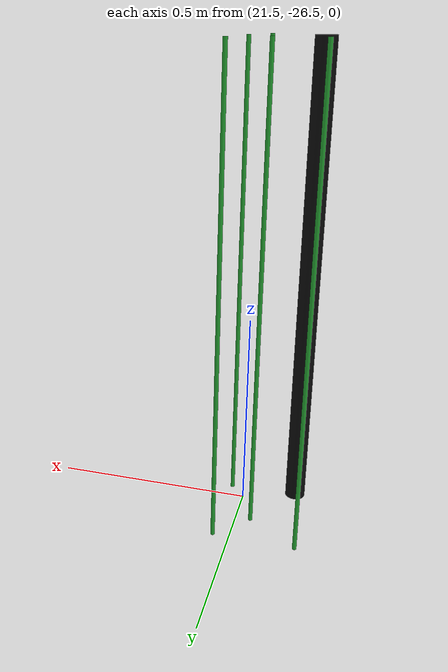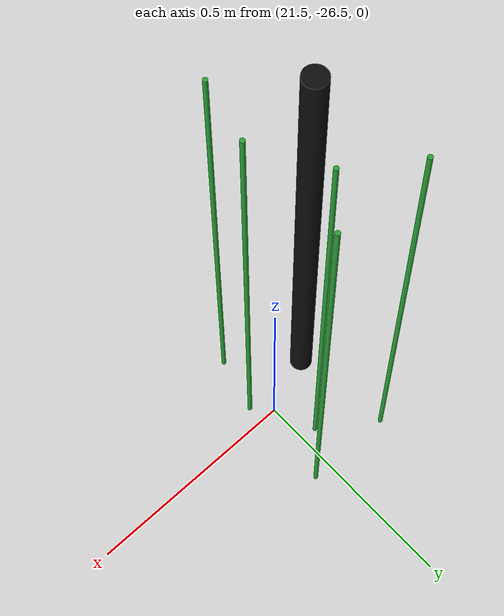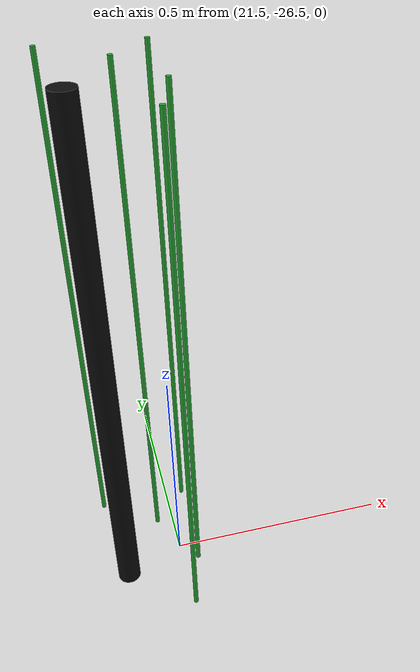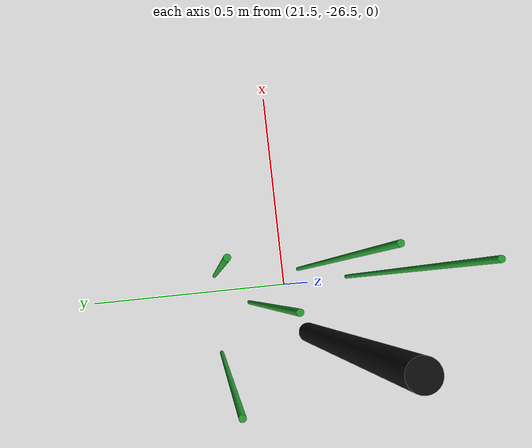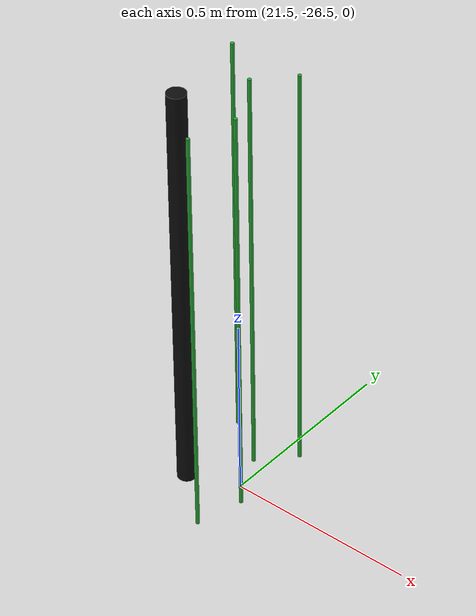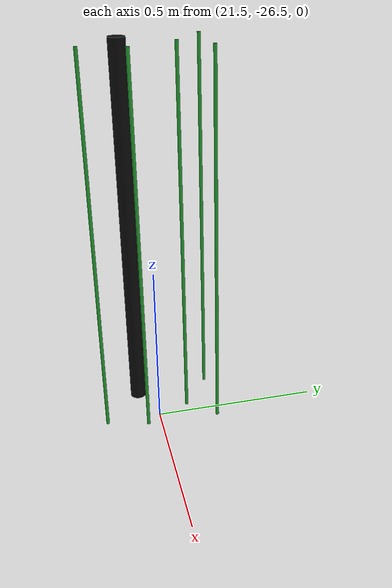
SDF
<sdf version="1.6">
 <world name="default">
  <model name="pole_14">
   <static>1</static>
   <pose>21.37 -26.55 0.575 0 -0 0</pose>
   <link name="link">
    <collision name="collision">
     <geometry><cylinder><length>1.15</length><radius>0.025</radius></cylinder></geometry>
    </collision>
    <visual name="visual">
     <geometry><cylinder><length>1.15</length><radius>0.025</radius></cylinder></geometry>
     <material>
      <script><uri>file://media/materials/scripts/gazebo.material</uri><name>Gazebo/Chrome</name></script>
      <shader type="vertex"><normal_map>__default__</normal_map></shader>
      <emissive>0.1 0.1 0.1 1</emissive>
      <specular>0.01 0.01 0.01 1</specular>
      <ambient>0.5 0.5 0.5 1</ambient>
      <diffuse>0.05 0.05 0.05 1</diffuse>
     </material>
    </visual>
   </link>
  </model>
  <model name="pole_27_clone_clone_135">
   <link name="link">
    <inertial>
     <mass>1</mass>
     <inertia><ixx>1</ixx><ixy>0</ixy><ixz>0</ixz><iyy>1</iyy><iyz>0</iyz><izz>1</izz></inertia>
    </inertial>
    <visual name="visual">
     <geometry><cylinder><length>1.15</length><radius>0.005</radius></cylinder></geometry>
     <material>
      <script><uri>file://media/materials/scripts/gazebo.material</uri><name>Gazebo/Green</name></script>
      <shader type="vertex"><normal_map>__default__</normal_map></shader>
      <emissive>0 0.1 0 1</emissive>
      <specular>0 0.01 0 1</specular>
      <ambient>0 0.5 0 1</ambient>
      <diffuse>0 0.05 0 1</diffuse>
     </material>
    </visual>
    <collision name="collision">
     <geometry><cylinder><radius>0.005</radius><length>1.15</length></cylinder></geometry>
     <surface>
      <friction>
       <ode><mu>1</mu><mu2>1</mu2><fdir1>0 0 0</fdir1><slip1>0</slip1><slip2>0</slip2></ode>
       <torsional>
        <coefficient>1</coefficient>
        <patch_radius>0</patch_radius>
        <surface_radius>0</surface_radius>
        <use_patch_radius>1</use_patch_radius>
        <ode><slip>0</slip></ode>
       </torsional>
      </friction>
      <bounce><restitution_coefficient>0</restitution_coefficient><threshold>1e+06</threshold></bounce>
      <contact>
       <collide_without_contact>0</collide_without_contact>
       <collide_without_contact_bitmask>1</collide_without_contact_bitmask>
       <collide_bitmask>1</collide_bitmask>
       <ode>
        <soft_cfm>0</soft_cfm>
        <soft_erp>0.2</soft_erp>
        <kp>1e+13</kp>
        <kd>1</kd>
        <max_vel>0.01</max_vel>
        <min_depth>0</min_depth>
       </ode>
       <bullet>
        <split_impulse>1</split_impulse>
        <split_impulse_penetration_threshold>-0.01</split_impulse_penetration_threshold>
        <soft_cfm>0</soft_cfm>
        <soft_erp>0.2</soft_erp>
        <kp>1e+13</kp>
        <kd>1</kd>
       </bullet>
      </contact>
     </surface>
    </collision>
   </link>
   <static>1</static>
   <pose>21.5369 -26.5418 0.575 0 -0 0</pose>
  </model>
  <model name="pole_27_clone_clone_136">
   <link name="link">
    <inertial>
     <mass>1</mass>
     <inertia><ixx>1</ixx><ixy>0</ixy><ixz>0</ixz><iyy>1</iyy><iyz>0</iyz><izz>1</izz></inertia>
    </inertial>
    <visual name="visual">
     <geometry><cylinder><length>1.15</length><radius>0.005</radius></cylinder></geometry>
     <material>
      <script><uri>file://media/materials/scripts/gazebo.material</uri><name>Gazebo/Green</name></script>
      <shader type="vertex"><normal_map>__default__</normal_map></shader>
      <emissive>0 0.1 0 1</emissive>
      <specular>0 0.01 0 1</specular>
      <ambient>0 0.5 0 1</ambient>
      <diffuse>0 0.05 0 1</diffuse>
     </material>
    </visual>
    <collision name="collision">
     <geometry><cylinder><radius>0.005</radius><length>1.15</length></cylinder></geometry>
     <surface>
      <friction>
       <ode><mu>1</mu><mu2>1</mu2><fdir1>0 0 0</fdir1><slip1>0</slip1><slip2>0</slip2></ode>
       <torsional>
        <coefficient>1</coefficient>
        <patch_radius>0</patch_radius>
        <surface_radius>0</surface_radius>
        <use_patch_radius>1</use_patch_radius>
        <ode><slip>0</slip></ode>
       </torsional>
      </friction>
      <bounce><restitution_coefficient>0</restitution_coefficient><threshold>1e+06</threshold></bounce>
      <contact>
       <collide_without_contact>0</collide_without_contact>
       <collide_without_contact_bitmask>1</collide_without_contact_bitmask>
       <collide_bitmask>1</collide_bitmask>
       <ode>
        <soft_cfm>0</soft_cfm>
        <soft_erp>0.2</soft_erp>
        <kp>1e+13</kp>
        <kd>1</kd>
        <max_vel>0.01</max_vel>
        <min_depth>0</min_depth>
       </ode>
       <bullet>
        <split_impulse>1</split_impulse>
        <split_impulse_penetration_threshold>-0.01</split_impulse_penetration_threshold>
        <soft_cfm>0</soft_cfm>
        <soft_erp>0.2</soft_erp>
        <kp>1e+13</kp>
        <kd>1</kd>
       </bullet>
      </contact>
     </surface>
    </collision>
   </link>
   <static>1</static>
   <pose>21.5042 -26.6663 0.575 0 -0 0</pose>
  </model>
  <model name="pole_27_clone_clone_140">
   <link name="link">
    <inertial>
     <mass>1</mass>
     <inertia><ixx>1</ixx><ixy>0</ixy><ixz>0</ixz><iyy>1</iyy><iyz>0</iyz><izz>1</izz></inertia>
    </inertial>
    <visual name="visual">
     <geometry><cylinder><length>1.15</length><radius>0.005</radius></cylinder></geometry>
     <material>
      <script><uri>file://media/materials/scripts/gazebo.material</uri><name>Gazebo/Green</name></script>
      <shader type="vertex"><normal_map>__default__</normal_map></shader>
      <emissive>0 0.1 0 1</emissive>
      <specular>0 0.01 0 1</specular>
      <ambient>0 0.5 0 1</ambient>
      <diffuse>0 0.05 0 1</diffuse>
     </material>
    </visual>
    <collision name="collision">
     <geometry><cylinder><radius>0.005</radius><length>1.15</length></cylinder></geometry>
     <surface>
      <friction>
       <ode><mu>1</mu><mu2>1</mu2><fdir1>0 0 0</fdir1><slip1>0</slip1><slip2>0</slip2></ode>
       <torsional>
        <coefficient>1</coefficient>
        <patch_radius>0</patch_radius>
        <surface_radius>0</surface_radius>
        <use_patch_radius>1</use_patch_radius>
        <ode><slip>0</slip></ode>
       </torsional>
      </friction>
      <bounce><restitution_coefficient>0</restitution_coefficient><threshold>1e+06</threshold></bounce>
      <contact>
       <collide_without_contact>0</collide_without_contact>
       <collide_without_contact_bitmask>1</collide_without_contact_bitmask>
       <collide_bitmask>1</collide_bitmask>
       <ode>
        <soft_cfm>0</soft_cfm>
        <soft_erp>0.2</soft_erp>
        <kp>1e+13</kp>
        <kd>1</kd>
        <max_vel>0.01</max_vel>
        <min_depth>0</min_depth>
       </ode>
       <bullet>
        <split_impulse>1</split_impulse>
        <split_impulse_penetration_threshold>-0.01</split_impulse_penetration_threshold>
        <soft_cfm>0</soft_cfm>
        <soft_erp>0.2</soft_erp>
        <kp>1e+13</kp>
        <kd>1</kd>
       </bullet>
      </contact>
     </surface>
    </collision>
   </link>
   <static>1</static>
   <pose>21.463 -26.4047 0.575 0 -0 0</pose>
  </model>
  <model name="pole_27_clone_clone_142">
   <link name="link">
    <inertial>
     <mass>1</mass>
     <inertia><ixx>1</ixx><ixy>0</ixy><ixz>0</ixz><iyy>1</iyy><iyz>0</iyz><izz>1</izz></inertia>
    </inertial>
    <visual name="visual">
     <geometry><cylinder><length>1.15</length><radius>0.005</radius></cylinder></geometry>
     <material>
      <script><uri>file://media/materials/scripts/gazebo.material</uri><name>Gazebo/Green</name></script>
      <shader type="vertex"><normal_map>__default__</normal_map></shader>
      <emissive>0 0.1 0 1</emissive>
      <specular>0 0.01 0 1</specular>
      <ambient>0 0.5 0 1</ambient>
      <diffuse>0 0.05 0 1</diffuse>
     </material>
    </visual>
    <collision name="collision">
     <geometry><cylinder><radius>0.005</radius><length>1.15</length></cylinder></geometry>
     <surface>
      <friction>
       <ode><mu>1</mu><mu2>1</mu2><fdir1>0 0 0</fdir1><slip1>0</slip1><slip2>0</slip2></ode>
       <torsional>
        <coefficient>1</coefficient>
        <patch_radius>0</patch_radius>
        <surface_radius>0</surface_radius>
        <use_patch_radius>1</use_patch_radius>
        <ode><slip>0</slip></ode>
       </torsional>
      </friction>
      <bounce><restitution_coefficient>0</restitution_coefficient><threshold>1e+06</threshold></bounce>
      <contact>
       <collide_without_contact>0</collide_without_contact>
       <collide_without_contact_bitmask>1</collide_without_contact_bitmask>
       <collide_bitmask>1</collide_bitmask>
       <ode>
        <soft_cfm>0</soft_cfm>
        <soft_erp>0.2</soft_erp>
        <kp>1e+13</kp>
        <kd>1</kd>
        <max_vel>0.01</max_vel>
        <min_depth>0</min_depth>
       </ode>
       <bullet>
        <split_impulse>1</split_impulse>
        <split_impulse_penetration_threshold>-0.01</split_impulse_penetration_threshold>
        <soft_cfm>0</soft_cfm>
        <soft_erp>0.2</soft_erp>
        <kp>1e+13</kp>
        <kd>1</kd>
       </bullet>
      </contact>
     </surface>
    </collision>
   </link>
   <static>1</static>
   <pose>21.5409 -26.3204 0.575 0 -0 0</pose>
  </model>
  <model name="pole_27_clone_clone_143">
   <link name="link">
    <inertial>
     <mass>1</mass>
     <inertia><ixx>1</ixx><ixy>0</ixy><ixz>0</ixz><iyy>1</iyy><iyz>0</iyz><izz>1</izz></inertia>
    </inertial>
    <visual name="visual">
     <geometry><cylinder><length>1.15</length><radius>0.005</radius></cylinder></geometry>
     <material>
      <script><uri>file://media/materials/scripts/gazebo.material</uri><name>Gazebo/Green</name></script>
      <shader type="vertex"><normal_map>__default__</normal_map></shader>
      <emissive>0 0.1 0 1</emissive>
      <specular>0 0.01 0 1</specular>
      <ambient>0 0.5 0 1</ambient>
      <diffuse>0 0.05 0 1</diffuse>
     </material>
    </visual>
    <collision name="collision">
     <geometry><cylinder><radius>0.005</radius><length>1.15</length></cylinder></geometry>
     <surface>
      <friction>
       <ode><mu>1</mu><mu2>1</mu2><fdir1>0 0 0</fdir1><slip1>0</slip1><slip2>0</slip2></ode>
       <torsional>
        <coefficient>1</coefficient>
        <patch_radius>0</patch_radius>
        <surface_radius>0</surface_radius>
        <use_patch_radius>1</use_patch_radius>
        <ode><slip>0</slip></ode>
       </torsional>
      </friction>
      <bounce><restitution_coefficient>0</restitution_coefficient><threshold>1e+06</threshold></bounce>
      <contact>
       <collide_without_contact>0</collide_without_contact>
       <collide_without_contact_bitmask>1</collide_without_contact_bitmask>
       <collide_bitmask>1</collide_bitmask>
       <ode>
        <soft_cfm>0</soft_cfm>
        <soft_erp>0.2</soft_erp>
        <kp>1e+13</kp>
        <kd>1</kd>
        <max_vel>0.01</max_vel>
        <min_depth>0</min_depth>
       </ode>
       <bullet>
        <split_impulse>1</split_impulse>
        <split_impulse_penetration_threshold>-0.01</split_impulse_penetration_threshold>
        <soft_cfm>0</soft_cfm>
        <soft_erp>0.2</soft_erp>
        <kp>1e+13</kp>
        <kd>1</kd>
       </bullet>
      </contact>
     </surface>
    </collision>
   </link>
   <static>1</static>
   <pose>21.3403 -26.3189 0.575 0 -0 0</pose>
  </model>
 </world>
</sdf>
